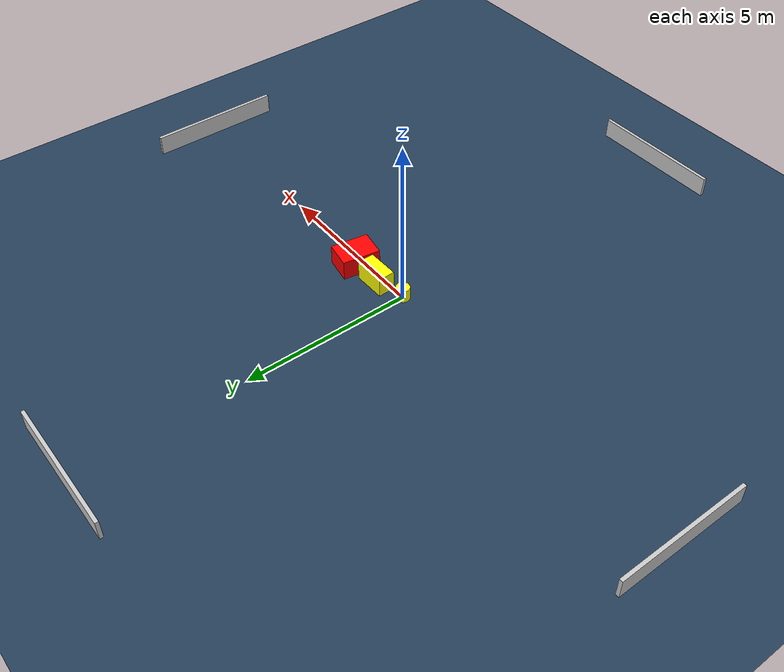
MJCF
<?xml version="1.0" ?>
<mujoco model="generated_environment">
  <option timestep="0.01" integrator="RK4" cone="elliptic"/>
  <default>
    <geom density="1"/>
  </default>
  <asset>
    <texture builtin="gradient" height="3072" name="skybox" rgb1="0.3 0.5 0.7" rgb2="0 0 0" type="skybox" width="512"/>
    <texture builtin="checker" height="300" name="groundplane" rgb1="0.2 0.3 0.4" rgb2="0.1 0.2 0.3" type="2d" width="300"/>
    <material name="groundplane" reflectance="0.2" texrepeat="5 5" texture="groundplane"/>
  </asset>
  <worldbody>
    <light dir="0 0 -1" directional="true" pos="0 0 1.5"/>
    <geom condim="3" friction="0.5 0.005 0.001" material="groundplane" name="floor" pos="0 0 0" size="0 0 0.05" type="plane"/>
    <body name="walls">
      <geom name="wall_1" condim="4" pos="-10.0 0.0 0.3" rgba="0.800000011920929 0.800000011920929 0.800000011920929 1.0" size="0.05 2.0 0.3" type="box"/>
      <geom name="wall_2" condim="4" pos="10.0 0.0 0.3" rgba="0.800000011920929 0.800000011920929 0.800000011920929 1.0" size="0.05 2.0 0.3" type="box"/>
      <geom name="wall_3" condim="4" pos="0.0 -10.0 0.3" rgba="0.800000011920929 0.800000011920929 0.800000011920929 1.0" size="2.0 0.05 0.3" type="box"/>
      <geom name="wall_4" condim="4" pos="0.0 10.0 0.3" rgba="0.800000011920929 0.800000011920929 0.800000011920929 1.0" size="2.0 0.05 0.3" type="box"/>
    </body>
    <body name="robot">
      <joint name="joint_x" type="slide" pos="0 0 0" axis="1 0 0"/>
      <joint name="joint_y" type="slide" pos="0 0 0" axis="0 1 0"/>
      <geom name="robot" type="cylinder" pos="0.0 0.0 0.2" size="0.2 0.2 0.0" mass="5.0" friction="1.0 0.005 0.0001" condim="4" rgba="1.0 1.0 0.0 1.0"/>
    </body>
    <body name="obstacle_1_movable">
      <geom name="obstacle_1_movable" condim="4" pos="0.9191150970174986 0.23098141172442746 0.3" euler="0 0 90.9998620375387" friction="0.0 0.005 0.001" rgba="1.0 1.0 0.0 1.0" size="0.25213059989562564 0.4729426551275538 0.3" type="box" mass="0.1"/>
      <joint type="free"/>
    </body>
    <body name="obstacle_2_static">
      <geom name="obstacle_2_static" condim="4" pos="1.8931459483796043 0.22665242133998725 0.3" euler="0 0 170.40298395387282" friction="0.0 0.005 0.001" rgba="1.0 0.0 0.0 1.0" size="0.4041552863649104 0.5601957983731891 0.3" type="box"/>
    </body>
  </worldbody>
  <actuator>
    <motor name="actuator_x" joint="joint_x" gear="1" ctrlrange="-1 1"/>
    <motor name="actuator_y" joint="joint_y" gear="1" ctrlrange="-1 1"/>
  </actuator>
</mujoco>
